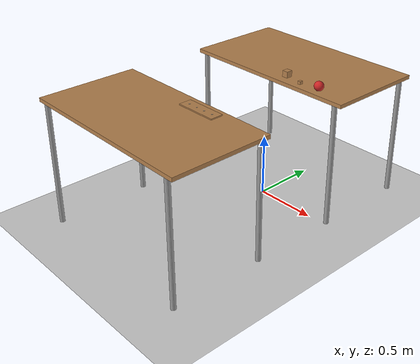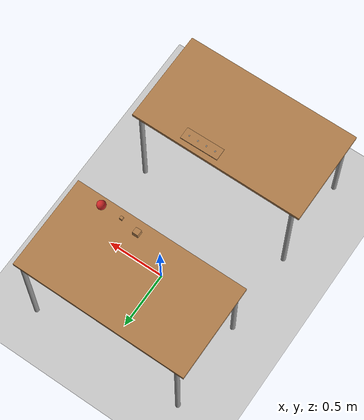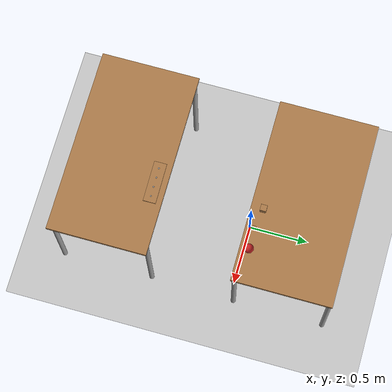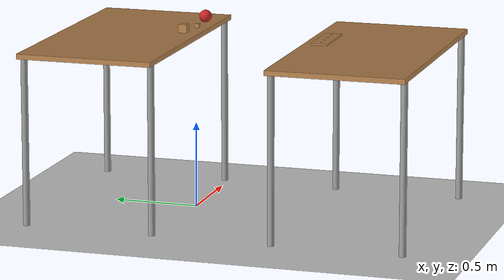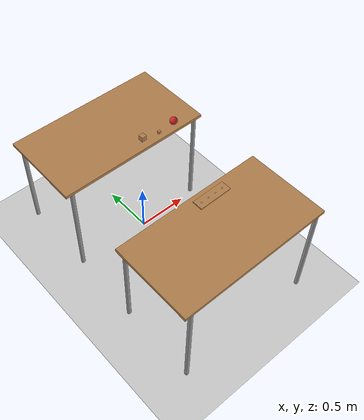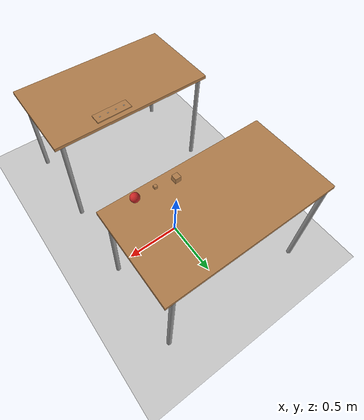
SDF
<sdf version="1.6">
 <world name="default">
  <light name="sun" type="directional">
   <pose>0 0 10 0 -0 0</pose>
   <diffuse>0.8 0.8 0.8 1</diffuse>
   <specular>0.2 0.2 0.2 1</specular>
   <attenuation>
    <range>1000</range>
    <constant>0.9</constant>
    <linear>0.01</linear>
    <quadratic>0.001</quadratic>
   </attenuation>
   <direction>-0.5 0.1 -0.9</direction>
   <spot><inner_angle>0</inner_angle><outer_angle>0</outer_angle><falloff>0</falloff></spot>
  </light>
  <model name="ground_plane">
   <static>1</static>
   <link name="link">
    <collision name="collision">
     <geometry><plane><normal>0 0 1</normal><size>100 100</size></plane></geometry>
     <surface>
      <contact><collide_bitmask>65535</collide_bitmask></contact>
      <friction><ode><mu>100</mu><mu2>50</mu2></ode></friction>
     </surface>
    </collision>
    <visual name="visual">
     <cast_shadows>0</cast_shadows>
     <geometry><plane><normal>0 0 1</normal><size>100 100</size></plane></geometry>
     <material>
      <script><uri>file://media/materials/scripts/gazebo.material</uri><name>Gazebo/Grey</name></script>
     </material>
    </visual>
   </link>
  </model>
  <gravity>0 0 -9.8</gravity>
  <magnetic_field>6e-06 2.3e-05 -4.2e-05</magnetic_field>
  <atmosphere type="adiabatic"/>
  <physics type="ode">
   <max_step_size>0.001</max_step_size>
   <real_time_factor>1</real_time_factor>
   <real_time_update_rate>1000</real_time_update_rate>
  </physics>
  <scene><ambient>0.4 0.4 0.4 1</ambient><background>0.7 0.7 0.7 1</background><shadows>1</shadows></scene>
  <spherical_coordinates>
   <surface_model>EARTH_WGS84</surface_model>
   <latitude_deg>0</latitude_deg>
   <longitude_deg>0</longitude_deg>
   <elevation>0</elevation>
   <heading_deg>0</heading_deg>
  </spherical_coordinates>
  <model name="table">
   <static>1</static>
   <link name="link">
    <collision name="surface">
     <pose>0 0 1 0 -0 0</pose>
     <geometry><box><size>1.5 0.8 0.03</size></box></geometry>
     <surface><friction><ode><mu>0.6</mu><mu2>0.6</mu2></ode></friction></surface>
    </collision>
    <visual name="visual1">
     <pose>0 0 1 0 -0 0</pose>
     <geometry><box><size>1.5 0.8 0.03</size></box></geometry>
     <material>
      <script><uri>file://media/materials/scripts/gazebo.material</uri><name>Gazebo/Wood</name></script>
     </material>
    </visual>
    <collision name="front_left_leg">
     <pose>0.68 0.38 0.5 0 -0 0</pose>
     <geometry><cylinder><radius>0.02</radius><length>1</length></cylinder></geometry>
    </collision>
    <visual name="front_left_leg">
     <pose>0.68 0.38 0.5 0 -0 0</pose>
     <geometry><cylinder><radius>0.02</radius><length>1</length></cylinder></geometry>
     <material>
      <script><uri>file://media/materials/scripts/gazebo.material</uri><name>Gazebo/Grey</name></script>
     </material>
    </visual>
    <collision name="front_right_leg">
     <pose>0.68 -0.38 0.5 0 -0 0</pose>
     <geometry><cylinder><radius>0.02</radius><length>1</length></cylinder></geometry>
    </collision>
    <visual name="front_right_leg">
     <pose>0.68 -0.38 0.5 0 -0 0</pose>
     <geometry><cylinder><radius>0.02</radius><length>1</length></cylinder></geometry>
     <material>
      <script><uri>file://media/materials/scripts/gazebo.material</uri><name>Gazebo/Grey</name></script>
     </material>
    </visual>
    <collision name="back_right_leg">
     <pose>-0.68 -0.38 0.5 0 -0 0</pose>
     <geometry><cylinder><radius>0.02</radius><length>1</length></cylinder></geometry>
    </collision>
    <visual name="back_right_leg">
     <pose>-0.68 -0.38 0.5 0 -0 0</pose>
     <geometry><cylinder><radius>0.02</radius><length>1</length></cylinder></geometry>
     <material>
      <script><uri>file://media/materials/scripts/gazebo.material</uri><name>Gazebo/Grey</name></script>
     </material>
    </visual>
    <collision name="back_left_leg">
     <pose>-0.68 0.38 0.5 0 -0 0</pose>
     <geometry><cylinder><radius>0.02</radius><length>1</length></cylinder></geometry>
    </collision>
    <visual name="back_left_leg">
     <pose>-0.68 0.38 0.5 0 -0 0</pose>
     <geometry><cylinder><radius>0.02</radius><length>1</length></cylinder></geometry>
     <material>
      <script><uri>file://media/materials/scripts/gazebo.material</uri><name>Gazebo/Grey</name></script>
     </material>
    </visual>
   </link>
   <pose>-0.031716 0.412617 0 0 -0 0</pose>
  </model>
  <model name="wood_cube_5cm">
   <link name="link">
    <pose>0 0 0.025 0 -0 0</pose>
    <inertial>
     <mass>0.0565</mass>
     <inertia>
      <ixx>2.35417e-05</ixx>
      <ixy>0</ixy>
      <ixz>0</ixz>
      <iyy>2.35417e-05</iyy>
      <iyz>0</iyz>
      <izz>2.35417e-05</izz>
     </inertia>
    </inertial>
    <collision name="collision">
     <geometry><box><size>0.05 0.05 0.05</size></box></geometry>
     <surface>
      <contact>
       <poissons_ratio>0.347</poissons_ratio>
       <elastic_modulus>8.8e+09</elastic_modulus>
       <ode><kp>100000</kp><kd>1</kd><max_vel>1</max_vel><min_depth>0.001</min_depth></ode>
      </contact>
      <friction>
       <torsional>
        <coefficient>1</coefficient>
        <use_patch_radius>0</use_patch_radius>
        <surface_radius>0.05</surface_radius>
       </torsional>
      </friction>
     </surface>
    </collision>
    <visual name="visual">
     <geometry><box><size>0.05 0.05 0.05</size></box></geometry>
     <material>
      <script><uri>file://media/materials/scripts/gazebo.material</uri><name>Gazebo/Wood</name></script>
     </material>
    </visual>
   </link>
   <pose>0.112345 0.112106 1.014 0 -0 0</pose>
  </model>
  <model name="wood_cube_2_5cm">
   <link name="link">
    <pose>0 0 0.0125 0 -0 0</pose>
    <inertial>
     <mass>0.0073</mass>
     <inertia>
      <ixx>7.60417e-07</ixx>
      <ixy>0</ixy>
      <ixz>0</ixz>
      <iyy>7.60417e-07</iyy>
      <iyz>0</iyz>
      <izz>7.60417e-07</izz>
     </inertia>
    </inertial>
    <collision name="collision">
     <geometry><box><size>0.025 0.025 0.025</size></box></geometry>
     <surface>
      <contact>
       <poissons_ratio>0.347</poissons_ratio>
       <elastic_modulus>8.8e+09</elastic_modulus>
       <ode><kp>100000</kp><kd>100</kd><max_vel>100</max_vel><min_depth>0.001</min_depth></ode>
      </contact>
      <friction>
       <torsional>
        <coefficient>1</coefficient>
        <use_patch_radius>0</use_patch_radius>
        <surface_radius>0.01</surface_radius>
       </torsional>
      </friction>
     </surface>
    </collision>
    <visual name="visual">
     <geometry><box><size>0.025 0.025 0.025</size></box></geometry>
     <material>
      <script><uri>file://media/materials/scripts/gazebo.material</uri><name>Gazebo/Wood</name></script>
     </material>
    </visual>
   </link>
   <pose>0.274322 0.081042 1.014 -2e-06 0 0</pose>
  </model>
  <model name="cricket_ball">
   <link name="link">
    <pose>0 0 0.0375 0 -0 0</pose>
    <inertial>
     <mass>0.1467</mass>
     <inertia>
      <ixx>8.25187e-05</ixx>
      <ixy>0</ixy>
      <ixz>0</ixz>
      <iyy>8.25187e-05</iyy>
      <iyz>0</iyz>
      <izz>8.25187e-05</izz>
     </inertia>
    </inertial>
    <collision name="collision">
     <geometry><sphere><radius>0.0375</radius></sphere></geometry>
     <surface>
      <contact>
       <poissons_ratio>0.347</poissons_ratio>
       <elastic_modulus>8.8e+09</elastic_modulus>
       <ode><kp>100000</kp><kd>100</kd><max_vel>100</max_vel><min_depth>0.001</min_depth></ode>
      </contact>
      <friction>
       <torsional>
        <coefficient>1</coefficient>
        <use_patch_radius>0</use_patch_radius>
        <surface_radius>0.01</surface_radius>
       </torsional>
      </friction>
     </surface>
    </collision>
    <visual name="visual">
     <geometry><sphere><radius>0.0375</radius></sphere></geometry>
     <material>
      <script><uri>file://media/materials/scripts/gazebo.material</uri><name>Gazebo/Red</name></script>
     </material>
    </visual>
    <velocity_decay><linear>0</linear><angular>0.005</angular></velocity_decay>
   </link>
   <pose>0.449883 0.086987 1.01399 0 -0 0</pose>
  </model>
  <model name="table_0">
   <static>1</static>
   <link name="link">
    <collision name="surface">
     <pose>0 0 1 0 -0 0</pose>
     <geometry><box><size>1.5 0.8 0.03</size></box></geometry>
     <surface><friction><ode><mu>0.6</mu><mu2>0.6</mu2></ode></friction></surface>
    </collision>
    <visual name="visual1">
     <pose>0 0 1 0 -0 0</pose>
     <geometry><box><size>1.5 0.8 0.03</size></box></geometry>
     <material>
      <script><uri>file://media/materials/scripts/gazebo.material</uri><name>Gazebo/Wood</name></script>
     </material>
    </visual>
    <collision name="front_left_leg">
     <pose>0.68 0.38 0.5 0 -0 0</pose>
     <geometry><cylinder><radius>0.02</radius><length>1</length></cylinder></geometry>
    </collision>
    <visual name="front_left_leg">
     <pose>0.68 0.38 0.5 0 -0 0</pose>
     <geometry><cylinder><radius>0.02</radius><length>1</length></cylinder></geometry>
     <material>
      <script><uri>file://media/materials/scripts/gazebo.material</uri><name>Gazebo/Grey</name></script>
     </material>
    </visual>
    <collision name="front_right_leg">
     <pose>0.68 -0.38 0.5 0 -0 0</pose>
     <geometry><cylinder><radius>0.02</radius><length>1</length></cylinder></geometry>
    </collision>
    <visual name="front_right_leg">
     <pose>0.68 -0.38 0.5 0 -0 0</pose>
     <geometry><cylinder><radius>0.02</radius><length>1</length></cylinder></geometry>
     <material>
      <script><uri>file://media/materials/scripts/gazebo.material</uri><name>Gazebo/Grey</name></script>
     </material>
    </visual>
    <collision name="back_right_leg">
     <pose>-0.68 -0.38 0.5 0 -0 0</pose>
     <geometry><cylinder><radius>0.02</radius><length>1</length></cylinder></geometry>
    </collision>
    <visual name="back_right_leg">
     <pose>-0.68 -0.38 0.5 0 -0 0</pose>
     <geometry><cylinder><radius>0.02</radius><length>1</length></cylinder></geometry>
     <material>
      <script><uri>file://media/materials/scripts/gazebo.material</uri><name>Gazebo/Grey</name></script>
     </material>
    </visual>
    <collision name="back_left_leg">
     <pose>-0.68 0.38 0.5 0 -0 0</pose>
     <geometry><cylinder><radius>0.02</radius><length>1</length></cylinder></geometry>
    </collision>
    <visual name="back_left_leg">
     <pose>-0.68 0.38 0.5 0 -0 0</pose>
     <geometry><cylinder><radius>0.02</radius><length>1</length></cylinder></geometry>
     <material>
      <script><uri>file://media/materials/scripts/gazebo.material</uri><name>Gazebo/Grey</name></script>
     </material>
    </visual>
   </link>
   <pose>-0.047088 -1.05584 0 0 -0 0</pose>
  </model>
  <model name="wooden_board">
   <link name="base">
    <pose>0 0 0.00523 0 -0 0</pose>
    <inertial>
     <mass>0.2765</mass>
     <inertia>
      <ixx>0.0025148</ixx>
      <ixy>0</ixy>
      <ixz>0</ixz>
      <iyy>0.00024037</iyy>
      <iyz>0</iyz>
      <izz>0.00275013</izz>
     </inertia>
    </inertial>
    <collision name="collision">
     <geometry><box><size>0.1016 0.3302 0.01046</size></box></geometry>
     <surface>
      <contact>
       <poissons_ratio>0.347</poissons_ratio>
       <elastic_modulus>8.8e+09</elastic_modulus>
       <ode><kp>100000</kp><kd>100</kd><max_vel>100</max_vel><min_depth>0.001</min_depth></ode>
      </contact>
      <friction>
       <torsional>
        <coefficient>1</coefficient>
        <use_patch_radius>0</use_patch_radius>
        <surface_radius>0.01</surface_radius>
       </torsional>
      </friction>
     </surface>
    </collision>
    <visual name="visual">
     <geometry><box><size>0.1016 0.3302 0.01046</size></box></geometry>
     <material>
      <script><uri>file://media/materials/scripts/gazebo.material</uri><name>Gazebo/Wood</name></script>
     </material>
    </visual>
    <visual name="tee_nut_1">
     <pose>0 -0.116 0 0 -0 0</pose>
     <geometry><cylinder><radius>0.00635</radius><length>0.0105646</length></cylinder></geometry>
     <material>
      <script><uri>file://media/materials/scripts/gazebo.material</uri><name>Gazebo/Grey</name></script>
     </material>
    </visual>
    <visual name="tee_nut_2">
     <pose>0 -0.038 0 0 -0 0</pose>
     <geometry><cylinder><radius>0.00635</radius><length>0.0105646</length></cylinder></geometry>
     <material>
      <script><uri>file://media/materials/scripts/gazebo.material</uri><name>Gazebo/Grey</name></script>
     </material>
    </visual>
    <visual name="tee_nut_3">
     <pose>0 0.038 0 0 -0 0</pose>
     <geometry><cylinder><radius>0.00635</radius><length>0.0105646</length></cylinder></geometry>
     <material>
      <script><uri>file://media/materials/scripts/gazebo.material</uri><name>Gazebo/Grey</name></script>
     </material>
    </visual>
    <visual name="tee_nut_4">
     <pose>0 0.116 0 0 -0 0</pose>
     <geometry><cylinder><radius>0.00635</radius><length>0.0105646</length></cylinder></geometry>
     <material>
      <script><uri>file://media/materials/scripts/gazebo.material</uri><name>Gazebo/Grey</name></script>
     </material>
    </visual>
   </link>
   <pose>0.12763 -0.751892 1.01399 0 -0 -1.55953</pose>
  </model>
 </world>
</sdf>
